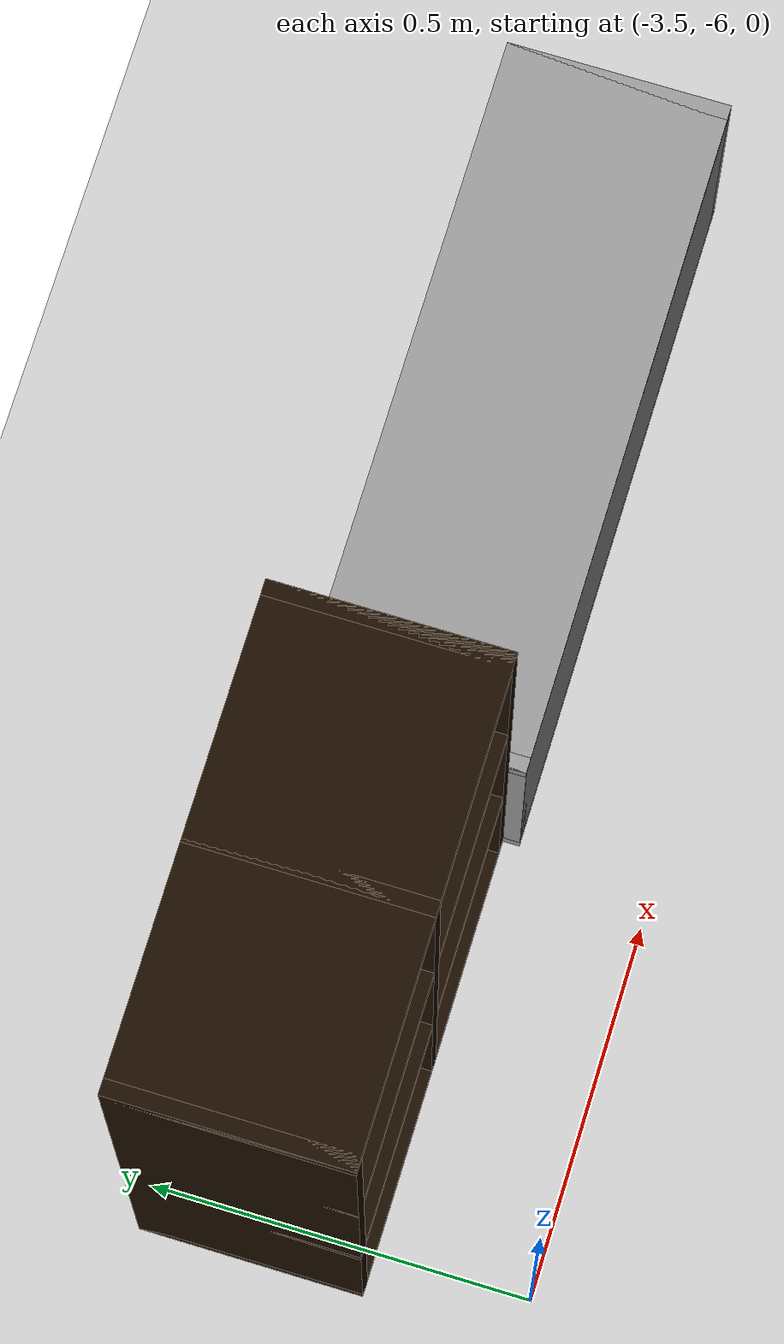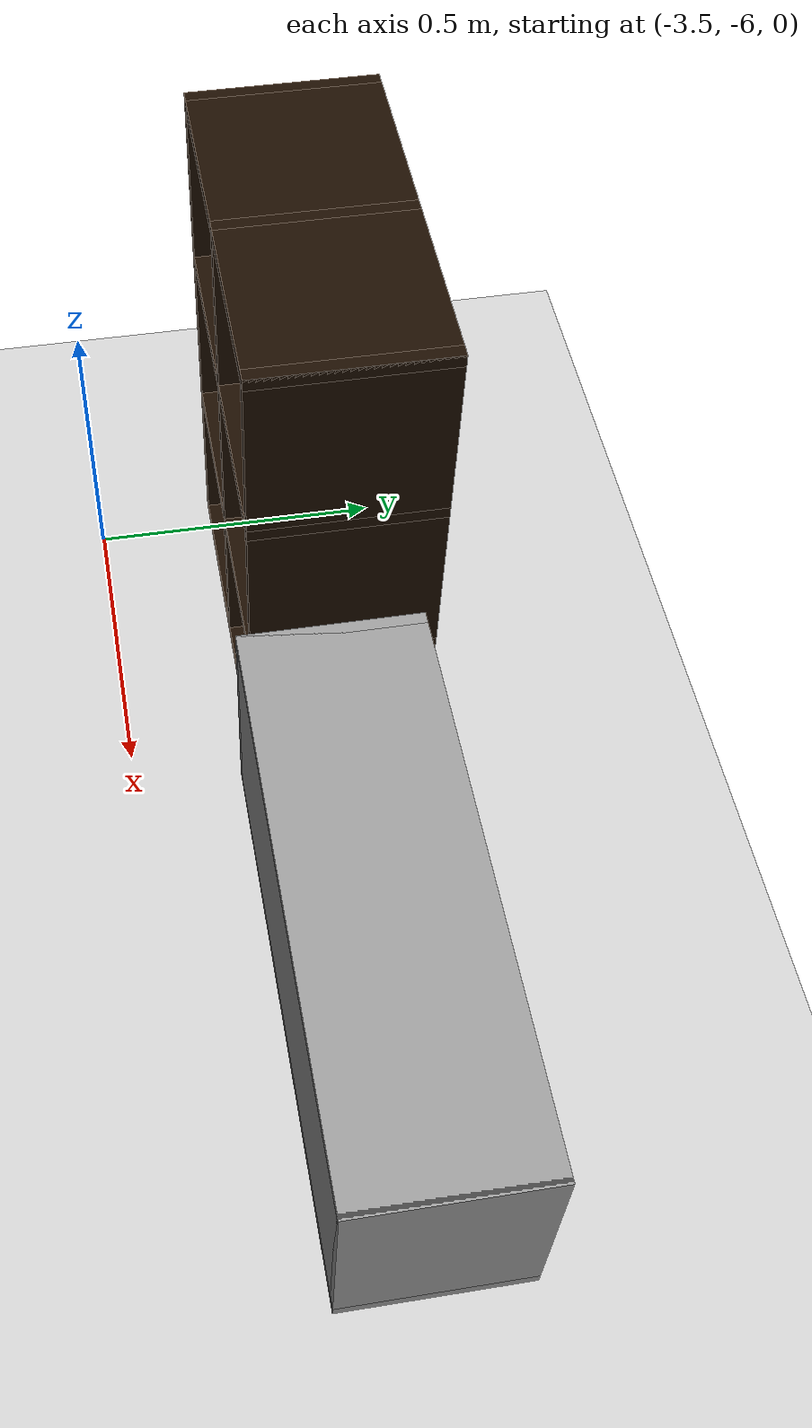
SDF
<sdf version="1.6">
 <world name="default">
  <model name="ground_plane">
   <static>1</static>
   <link name="link">
    <collision name="collision">
     <geometry><plane><normal>0 0 1</normal><size>100 100</size></plane></geometry>
     <surface><friction><ode><mu>100</mu><mu2>50</mu2></ode></friction></surface>
    </collision>
    <visual name="visual">
     <cast_shadows>0</cast_shadows>
     <geometry><plane><normal>0 0 1</normal><size>100 100</size></plane></geometry>
     <material>
      <script><uri>file://media/materials/scripts/gazebo.material</uri><name>Gazebo/Grey</name></script>
     </material>
    </visual>
   </link>
  </model>
  <model name="Wall_Cabinet_36x15W_0">
   <link name="Wall_0">
    <pose>0 0 0.01 0 -0 0</pose>
    <inertial>
     <mass>1.9796</mass>
     <inertia><ixx>0.0145</ixx><iyy>0.1511</iyy><izz>0.1367</izz><ixy>0</ixy><ixz>0</ixz><iyz>0</iyz></inertia>
    </inertial>
    <collision name="Wall_0_Collision"><geometry><box><size>0.91 0.296 0.02</size></box></geometry></collision>
    <visual name="Wall_0_Visual">
     <geometry><box><size>0.91 0.296 0.02</size></box></geometry>
     <material>
      <script><uri>file://media/materials/scripts/gazebo.material</uri><name>Gazebo/Grey</name></script>
      <ambient>1 1 1 1</ambient>
     </material>
    </visual>
   </link>
   <joint name="0_2" type="fixed">
    <pose>-0.455 0 0 0 -0 0</pose>
    <parent>Wall_2</parent>
    <child>Wall_0</child>
    <axis>
     <xyz>0 0 1</xyz>
     <use_parent_model_frame>0</use_parent_model_frame>
     <limit><lower>-1e+16</lower><upper>1e+16</upper></limit>
    </axis>
   </joint>
   <joint name="0_4" type="fixed">
    <pose>0.455 0 0 0 -0 0</pose>
    <parent>Wall_4</parent>
    <child>Wall_0</child>
    <axis>
     <xyz>0 0 1</xyz>
     <use_parent_model_frame>0</use_parent_model_frame>
     <limit><lower>-1e+16</lower><upper>1e+16</upper></limit>
    </axis>
   </joint>
   <joint name="0_8" type="fixed">
    <pose>0 -0.148 0 0 -0 0</pose>
    <parent>Wall_8</parent>
    <child>Wall_0</child>
    <axis>
     <xyz>0 0 1</xyz>
     <use_parent_model_frame>0</use_parent_model_frame>
     <limit><lower>-1e+16</lower><upper>1e+16</upper></limit>
    </axis>
   </joint>
   <link name="Wall_2">
    <pose>-0.445 0 0.192 0 -0 0</pose>
    <inertial>
     <mass>0.8353</mass>
     <inertia><ixx>0.0061</ixx><iyy>0.0164</iyy><izz>0.0103</izz><ixy>0</ixy><ixz>0</ixz><iyz>0</iyz></inertia>
    </inertial>
    <collision name="Wall_2_Collision"><geometry><box><size>0.02 0.296 0.384</size></box></geometry></collision>
    <visual name="Wall_2_Visual">
     <geometry><box><size>0.02 0.296 0.384</size></box></geometry>
     <material>
      <script><uri>file://media/materials/scripts/gazebo.material</uri><name>Gazebo/Grey</name></script>
      <ambient>1 1 1 1</ambient>
     </material>
    </visual>
   </link>
   <link name="Wall_4">
    <pose>0.445 0 0.192 0 -0 0</pose>
    <inertial>
     <mass>0.8353</mass>
     <inertia><ixx>0.0061</ixx><iyy>0.0164</iyy><izz>0.0103</izz><ixy>0</ixy><ixz>0</ixz><iyz>0</iyz></inertia>
    </inertial>
    <collision name="Wall_4_Collision"><geometry><box><size>0.02 0.296 0.384</size></box></geometry></collision>
    <visual name="Wall_4_Visual">
     <geometry><box><size>0.02 0.296 0.384</size></box></geometry>
     <material>
      <script><uri>file://media/materials/scripts/gazebo.material</uri><name>Gazebo/Grey</name></script>
      <ambient>1 1 1 1</ambient>
     </material>
    </visual>
   </link>
   <link name="Wall_6">
    <pose>0 0 0.374 0 -0 0</pose>
    <inertial>
     <mass>1.9796</mass>
     <inertia><ixx>0.0145</ixx><iyy>0.1511</iyy><izz>0.1367</izz><ixy>0</ixy><ixz>0</ixz><iyz>0</iyz></inertia>
    </inertial>
    <collision name="Wall_6_Collision"><geometry><box><size>0.91 0.296 0.02</size></box></geometry></collision>
    <visual name="Wall_6_Visual">
     <geometry><box><size>0.91 0.296 0.02</size></box></geometry>
     <material>
      <script><uri>file://media/materials/scripts/gazebo.material</uri><name>Gazebo/Grey</name></script>
      <ambient>1 1 1 1</ambient>
     </material>
    </visual>
   </link>
   <joint name="6_2" type="fixed">
    <pose>-0.455 0 0 0 -0 0</pose>
    <parent>Wall_2</parent>
    <child>Wall_6</child>
    <axis>
     <xyz>0 0 1</xyz>
     <use_parent_model_frame>0</use_parent_model_frame>
     <limit><lower>-1e+16</lower><upper>1e+16</upper></limit>
    </axis>
   </joint>
   <joint name="6_4" type="fixed">
    <pose>0.455 0 0 0 -0 0</pose>
    <parent>Wall_4</parent>
    <child>Wall_6</child>
    <axis>
     <xyz>0 0 1</xyz>
     <use_parent_model_frame>0</use_parent_model_frame>
     <limit><lower>-1e+16</lower><upper>1e+16</upper></limit>
    </axis>
   </joint>
   <joint name="6_8" type="fixed">
    <pose>0 -0.148 0 0 -0 0</pose>
    <parent>Wall_8</parent>
    <child>Wall_6</child>
    <axis>
     <xyz>0 0 1</xyz>
     <use_parent_model_frame>0</use_parent_model_frame>
     <limit><lower>-1e+16</lower><upper>1e+16</upper></limit>
    </axis>
   </joint>
   <link name="Wall_8">
    <pose>0 -0.138 0.19 0 -0 0</pose>
    <inertial>
     <mass>2.5302</mass>
     <inertia><ixx>0.0305</ixx><iyy>0.1732</iyy><izz>0.2035</izz><ixy>0</ixy><ixz>0</ixz><iyz>0</iyz></inertia>
    </inertial>
    <collision name="Wall_8_Collision"><geometry><box><size>0.906 0.02 0.38</size></box></geometry></collision>
    <visual name="Wall_8_Visual">
     <geometry><box><size>0.906 0.02 0.38</size></box></geometry>
     <material>
      <script><uri>file://media/materials/scripts/gazebo.material</uri><name>Gazebo/Grey</name></script>
      <ambient>1 1 1 1</ambient>
     </material>
    </visual>
   </link>
   <joint name="8_2" type="fixed">
    <pose>-0.453 0 0 0 -0 0</pose>
    <parent>Wall_2</parent>
    <child>Wall_8</child>
    <axis>
     <xyz>0 1 0</xyz>
     <use_parent_model_frame>0</use_parent_model_frame>
     <limit><lower>-1e+16</lower><upper>1e+16</upper></limit>
    </axis>
   </joint>
   <joint name="8_4" type="fixed">
    <pose>0.453 0 0 0 -0 0</pose>
    <parent>Wall_4</parent>
    <child>Wall_8</child>
    <axis>
     <xyz>0 1 0</xyz>
     <use_parent_model_frame>0</use_parent_model_frame>
     <limit><lower>-1e+16</lower><upper>1e+16</upper></limit>
    </axis>
   </joint>
   <static>1</static>
   <pose>-2.48426 -5.67054 0 0 -0 0</pose>
  </model>
  <model name="6_Cube_StorageE">
   <link name="Wall_0">
    <pose>0 0 0.01 0 -0 0</pose>
    <inertial>
     <mass>1.6201</mass>
     <inertia><ixx>0.0119</ixx><iyy>0.0631</iyy><izz>0.0513</izz><ixy>0</ixy><ixz>0</ixz><iyz>0</iyz></inertia>
    </inertial>
    <collision name="Wall_0_Collision"><geometry><box><size>0.616 0.296 0.02</size></box></geometry></collision>
    <visual name="Wall_0_Visual">
     <geometry><box><size>0.616 0.296 0.02</size></box></geometry>
     <material>
      <script><uri>file://media/materials/scripts/gazebo.material</uri><name>Gazebo/Grey</name></script>
      <ambient>0.105882 0.0509804 0 1</ambient>
     </material>
    </visual>
   </link>
   <joint name="0_2" type="fixed">
    <pose>-0.308 0 0 0 -0 0</pose>
    <parent>Wall_2</parent>
    <child>Wall_0</child>
    <axis>
     <xyz>1 0 0</xyz>
     <use_parent_model_frame>0</use_parent_model_frame>
     <limit><lower>-1e+16</lower><upper>1e+16</upper></limit>
    </axis>
   </joint>
   <joint name="0_12" type="fixed">
    <parent>Wall_12</parent>
    <child>Wall_0</child>
    <axis>
     <xyz>0 0 1</xyz>
     <use_parent_model_frame>0</use_parent_model_frame>
     <limit><lower>-1e+16</lower><upper>1e+16</upper></limit>
    </axis>
   </joint>
   <joint name="0_4" type="fixed">
    <pose>0.308 0 0 0 -0 0</pose>
    <parent>Wall_4</parent>
    <child>Wall_0</child>
    <axis>
     <xyz>1 0 0</xyz>
     <use_parent_model_frame>0</use_parent_model_frame>
     <limit><lower>-1e+16</lower><upper>1e+16</upper></limit>
    </axis>
   </joint>
   <link name="Wall_10">
    <pose>0 0 0.61 0 -0 0</pose>
    <inertial>
     <mass>1.6201</mass>
     <inertia><ixx>0.0119</ixx><iyy>0.0631</iyy><izz>0.0513</izz><ixy>0</ixy><ixz>0</ixz><iyz>0</iyz></inertia>
    </inertial>
    <collision name="Wall_10_Collision"><geometry><box><size>0.616 0.296 0.02</size></box></geometry></collision>
    <visual name="Wall_10_Visual">
     <geometry><box><size>0.616 0.296 0.02</size></box></geometry>
     <material>
      <script><uri>file://media/materials/scripts/gazebo.material</uri><name>Gazebo/Grey</name></script>
      <ambient>0.105882 0.0509804 0 1</ambient>
     </material>
    </visual>
   </link>
   <joint name="10_2" type="fixed">
    <pose>-0.308 0 0 0 -0 0</pose>
    <parent>Wall_2</parent>
    <child>Wall_10</child>
    <axis>
     <xyz>1 0 0</xyz>
     <use_parent_model_frame>0</use_parent_model_frame>
     <limit><lower>-1e+16</lower><upper>1e+16</upper></limit>
    </axis>
   </joint>
   <joint name="10_12" type="fixed">
    <parent>Wall_12</parent>
    <child>Wall_10</child>
    <axis>
     <xyz>0 0 1</xyz>
     <use_parent_model_frame>0</use_parent_model_frame>
     <limit><lower>-1e+16</lower><upper>1e+16</upper></limit>
    </axis>
   </joint>
   <joint name="10_4" type="fixed">
    <pose>0.308 0 0 0 -0 0</pose>
    <parent>Wall_4</parent>
    <child>Wall_10</child>
    <axis>
     <xyz>1 0 0</xyz>
     <use_parent_model_frame>0</use_parent_model_frame>
     <limit><lower>-1e+16</lower><upper>1e+16</upper></limit>
    </axis>
   </joint>
   <link name="Wall_12">
    <pose>0 0 0.4575 0 -0 0</pose>
    <inertial>
     <mass>2.4065</mass>
     <inertia><ixx>0.0177</ixx><iyy>0.1855</iyy><izz>0.168</izz><ixy>0</ixy><ixz>0</ixz><iyz>0</iyz></inertia>
    </inertial>
    <collision name="Wall_12_Collision"><geometry><box><size>0.02 0.296 0.915</size></box></geometry></collision>
    <visual name="Wall_12_Visual">
     <geometry><box><size>0.02 0.296 0.915</size></box></geometry>
     <material>
      <script><uri>file://media/materials/scripts/gazebo.material</uri><name>Gazebo/Grey</name></script>
      <ambient>0.105882 0.0509804 0 1</ambient>
     </material>
    </visual>
   </link>
   <link name="Wall_2">
    <pose>-0.298 0 0.4575 0 -0 0</pose>
    <inertial>
     <mass>2.4065</mass>
     <inertia><ixx>0.0177</ixx><iyy>0.1855</iyy><izz>0.168</izz><ixy>0</ixy><ixz>0</ixz><iyz>0</iyz></inertia>
    </inertial>
    <collision name="Wall_2_Collision"><geometry><box><size>0.02 0.296 0.915</size></box></geometry></collision>
    <visual name="Wall_2_Visual">
     <geometry><box><size>0.02 0.296 0.915</size></box></geometry>
     <material>
      <script><uri>file://media/materials/scripts/gazebo.material</uri><name>Gazebo/Grey</name></script>
      <ambient>0.105882 0.0509804 0 1</ambient>
     </material>
    </visual>
   </link>
   <link name="Wall_4">
    <pose>0.298 0 0.4575 0 -0 0</pose>
    <inertial>
     <mass>2.4065</mass>
     <inertia><ixx>0.0177</ixx><iyy>0.1855</iyy><izz>0.168</izz><ixy>0</ixy><ixz>0</ixz><iyz>0</iyz></inertia>
    </inertial>
    <collision name="Wall_4_Collision"><geometry><box><size>0.02 0.296 0.915</size></box></geometry></collision>
    <visual name="Wall_4_Visual">
     <geometry><box><size>0.02 0.296 0.915</size></box></geometry>
     <material>
      <script><uri>file://media/materials/scripts/gazebo.material</uri><name>Gazebo/Grey</name></script>
      <ambient>0.105882 0.0509804 0 1</ambient>
     </material>
    </visual>
   </link>
   <link name="Wall_6">
    <pose>0 0 0.905 0 -0 0</pose>
    <inertial>
     <mass>1.6201</mass>
     <inertia><ixx>0.0119</ixx><iyy>0.0631</iyy><izz>0.0513</izz><ixy>0</ixy><ixz>0</ixz><iyz>0</iyz></inertia>
    </inertial>
    <collision name="Wall_6_Collision"><geometry><box><size>0.616 0.296 0.02</size></box></geometry></collision>
    <visual name="Wall_6_Visual">
     <geometry><box><size>0.616 0.296 0.02</size></box></geometry>
     <material>
      <script><uri>file://media/materials/scripts/gazebo.material</uri><name>Gazebo/Grey</name></script>
      <ambient>0.105882 0.0509804 0 1</ambient>
     </material>
    </visual>
   </link>
   <joint name="6_2" type="fixed">
    <pose>-0.308 0 0 0 -0 0</pose>
    <parent>Wall_2</parent>
    <child>Wall_6</child>
    <axis>
     <xyz>2 0 0</xyz>
     <use_parent_model_frame>0</use_parent_model_frame>
     <limit><lower>-1e+16</lower><upper>1e+16</upper></limit>
    </axis>
   </joint>
   <joint name="6_12" type="fixed">
    <parent>Wall_12</parent>
    <child>Wall_6</child>
    <axis>
     <xyz>0 0 1</xyz>
     <use_parent_model_frame>0</use_parent_model_frame>
     <limit><lower>-1e+16</lower><upper>1e+16</upper></limit>
    </axis>
   </joint>
   <joint name="6_4" type="fixed">
    <pose>0.308 0 0 0 -0 0</pose>
    <parent>Wall_4</parent>
    <child>Wall_6</child>
    <axis>
     <xyz>1 0 0</xyz>
     <use_parent_model_frame>0</use_parent_model_frame>
     <limit><lower>-1e+16</lower><upper>1e+16</upper></limit>
    </axis>
   </joint>
   <link name="Wall_8">
    <pose>0 0 0.305 0 -0 0</pose>
    <inertial>
     <mass>1.6201</mass>
     <inertia><ixx>0.0119</ixx><iyy>0.0631</iyy><izz>0.0513</izz><ixy>0</ixy><ixz>0</ixz><iyz>0</iyz></inertia>
    </inertial>
    <collision name="Wall_8_Collision"><geometry><box><size>0.616 0.296 0.02</size></box></geometry></collision>
    <visual name="Wall_8_Visual">
     <geometry><box><size>0.616 0.296 0.02</size></box></geometry>
     <material>
      <script><uri>file://media/materials/scripts/gazebo.material</uri><name>Gazebo/Grey</name></script>
      <ambient>0.105882 0.0509804 0 1</ambient>
     </material>
    </visual>
   </link>
   <joint name="8_2" type="fixed">
    <pose>-0.308 0 0 0 -0 0</pose>
    <parent>Wall_2</parent>
    <child>Wall_8</child>
    <axis>
     <xyz>1 0 0</xyz>
     <use_parent_model_frame>0</use_parent_model_frame>
     <limit><lower>-1e+16</lower><upper>1e+16</upper></limit>
    </axis>
   </joint>
   <joint name="8_12" type="fixed">
    <parent>Wall_12</parent>
    <child>Wall_8</child>
    <axis>
     <xyz>0 0 1</xyz>
     <use_parent_model_frame>0</use_parent_model_frame>
     <limit><lower>-1e+16</lower><upper>1e+16</upper></limit>
    </axis>
   </joint>
   <joint name="8_4" type="fixed">
    <pose>0.308 0 0 0 -0 0</pose>
    <parent>Wall_4</parent>
    <child>Wall_8</child>
    <axis>
     <xyz>1 0 0</xyz>
     <use_parent_model_frame>0</use_parent_model_frame>
     <limit><lower>-1e+16</lower><upper>1e+16</upper></limit>
    </axis>
   </joint>
   <static>1</static>
   <pose>-3.24822 -5.64839 0 0 -0 0</pose>
  </model>
 </world>
</sdf>
